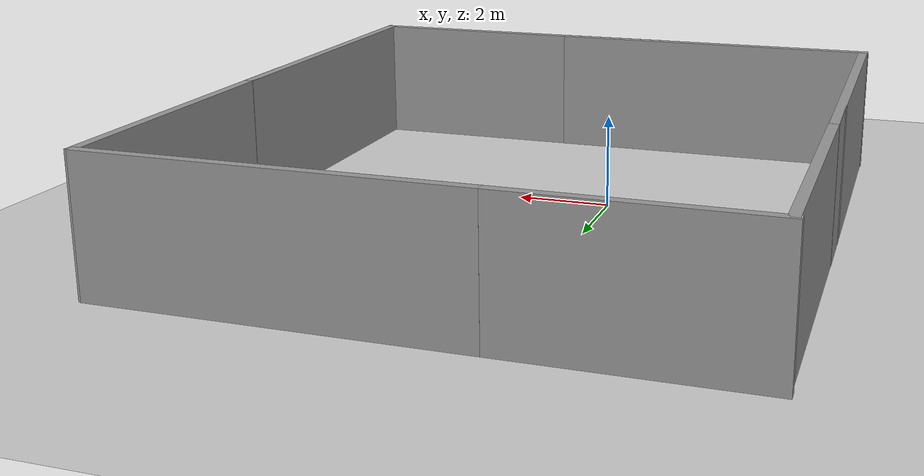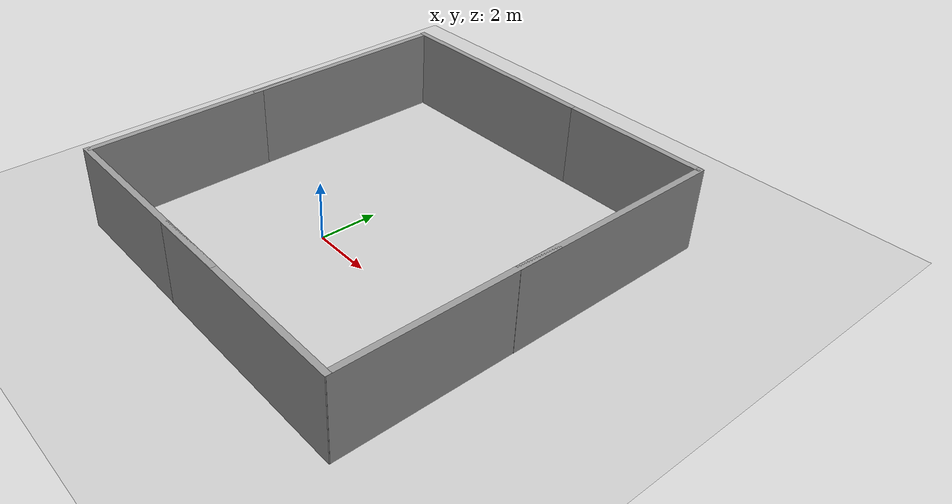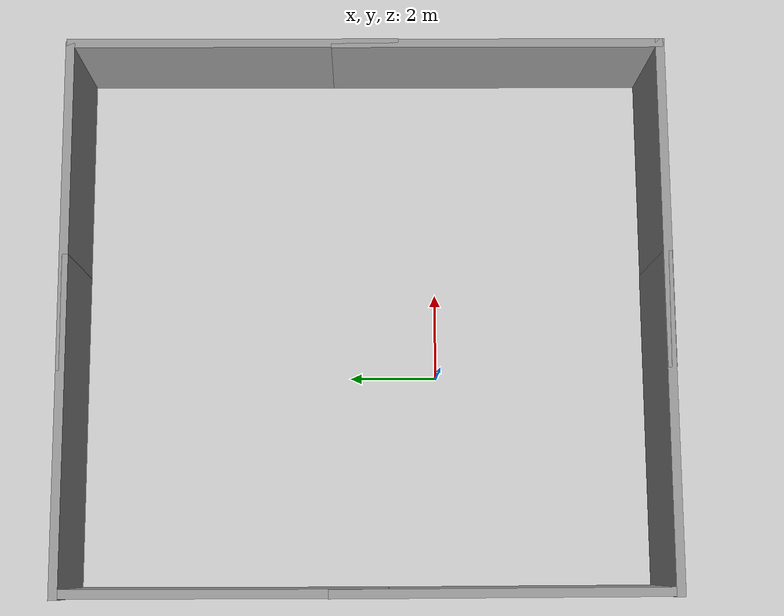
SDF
<sdf version="1.6">
 <world name="default">
  <model name="ground_plane">
   <static>1</static>
   <link name="link">
    <collision name="collision">
     <geometry><plane><normal>0 0 1</normal><size>100 100</size></plane></geometry>
     <surface><friction><ode><mu>100</mu><mu2>50</mu2></ode></friction></surface>
    </collision>
    <visual name="visual">
     <cast_shadows>0</cast_shadows>
     <geometry><plane><normal>0 0 1</normal><size>100 100</size></plane></geometry>
     <material>
      <script><uri>file://media/materials/scripts/gazebo.material</uri><name>Gazebo/Grey</name></script>
     </material>
    </visual>
   </link>
  </model>
  <light name="sun" type="directional">
   <pose>0 0 10 0 -0 0</pose>
   <diffuse>0.8 0.8 0.8 1</diffuse>
   <specular>0.2 0.2 0.2 1</specular>
   <attenuation>
    <range>1000</range>
    <constant>0.9</constant>
    <linear>0.01</linear>
    <quadratic>0.001</quadratic>
   </attenuation>
   <direction>-0.5 0.1 -0.9</direction>
  </light>
  <gravity>0 0 -9.8</gravity>
  <magnetic_field>6e-06 2.3e-05 -4.2e-05</magnetic_field>
  <atmosphere type="adiabatic"/>
  <physics name="default_physics" default="0" type="ode">
   <max_step_size>0.001</max_step_size>
   <real_time_factor>1</real_time_factor>
   <real_time_update_rate>1000</real_time_update_rate>
  </physics>
  <scene><ambient>0.4 0.4 0.4 1</ambient><background>0.7 0.7 0.7 1</background><shadows>1</shadows></scene>
  <spherical_coordinates>
   <surface_model>EARTH_WGS84</surface_model>
   <latitude_deg>0</latitude_deg>
   <longitude_deg>0</longitude_deg>
   <elevation>0</elevation>
   <heading_deg>0</heading_deg>
  </spherical_coordinates>
  <model name="grey_wall">
   <static>1</static>
   <link name="link">
    <pose>0 0 1.4 0 -0 0</pose>
    <collision name="collision"><geometry><box><size>7.5 0.2 2.8</size></box></geometry></collision>
    <visual name="visual">
     <cast_shadows>0</cast_shadows>
     <geometry><box><size>7.5 0.2 2.8</size></box></geometry>
     <material>
      <script>
       <uri>model://grey_wall/materials/scripts</uri>
       <uri>model://grey_wall/materials/textures</uri>
       <name>vrc/grey_wall</name>
      </script>
     </material>
    </visual>
   </link>
   <pose>-1.26893 -5.01303 0 0 -0 0</pose>
  </model>
  <model name="grey_wall_0">
   <static>1</static>
   <link name="link">
    <pose>0 0 1.4 0 -0 0</pose>
    <collision name="collision"><geometry><box><size>7.5 0.2 2.8</size></box></geometry></collision>
    <visual name="visual">
     <cast_shadows>0</cast_shadows>
     <geometry><box><size>7.5 0.2 2.8</size></box></geometry>
     <material>
      <script>
       <uri>model://grey_wall/materials/scripts</uri>
       <uri>model://grey_wall/materials/textures</uri>
       <name>vrc/grey_wall</name>
      </script>
     </material>
    </visual>
   </link>
   <pose>3.64249 -5.02065 0 0 -0 0</pose>
  </model>
  <model name="grey_wall_1">
   <static>1</static>
   <link name="link">
    <pose>0 0 1.4 0 -0 0</pose>
    <collision name="collision"><geometry><box><size>7.5 0.2 2.8</size></box></geometry></collision>
    <visual name="visual">
     <cast_shadows>0</cast_shadows>
     <geometry><box><size>7.5 0.2 2.8</size></box></geometry>
     <material>
      <script>
       <uri>model://grey_wall/materials/scripts</uri>
       <uri>model://grey_wall/materials/textures</uri>
       <name>vrc/grey_wall</name>
      </script>
     </material>
    </visual>
   </link>
   <pose>-1.294 8.31084 0 0 -0 0</pose>
  </model>
  <model name="grey_wall_2">
   <static>1</static>
   <link name="link">
    <pose>0 0 1.4 0 -0 0</pose>
    <collision name="collision"><geometry><box><size>7.5 0.2 2.8</size></box></geometry></collision>
    <visual name="visual">
     <cast_shadows>0</cast_shadows>
     <geometry><box><size>7.5 0.2 2.8</size></box></geometry>
     <material>
      <script>
       <uri>model://grey_wall/materials/scripts</uri>
       <uri>model://grey_wall/materials/textures</uri>
       <name>vrc/grey_wall</name>
      </script>
     </material>
    </visual>
   </link>
   <pose>3.62319 8.312 0 0 -0 0</pose>
  </model>
  <model name="grey_wall_3">
   <static>1</static>
   <link name="link">
    <pose>0 0 1.4 0 -0 0</pose>
    <collision name="collision"><geometry><box><size>7.5 0.2 2.8</size></box></geometry></collision>
    <visual name="visual">
     <cast_shadows>0</cast_shadows>
     <geometry><box><size>7.5 0.2 2.8</size></box></geometry>
     <material>
      <script>
       <uri>model://grey_wall/materials/scripts</uri>
       <uri>model://grey_wall/materials/textures</uri>
       <name>vrc/grey_wall</name>
      </script>
     </material>
    </visual>
   </link>
   <pose>-4.91739 -1.27823 -0 0 0 -1.56721</pose>
  </model>
  <model name="grey_wall_3_clone">
   <static>1</static>
   <link name="link">
    <pose>0 0 1.4 0 -0 0</pose>
    <collision name="collision"><geometry><box><size>7.5 0.2 2.8</size></box></geometry></collision>
    <visual name="visual">
     <cast_shadows>0</cast_shadows>
     <geometry><box><size>7.5 0.2 2.8</size></box></geometry>
     <material>
      <script>
       <uri>model://grey_wall/materials/scripts</uri>
       <uri>model://grey_wall/materials/textures</uri>
       <name>vrc/grey_wall</name>
      </script>
     </material>
    </visual>
   </link>
   <pose>-4.92072 4.59651 0 0 -0 1.56921</pose>
  </model>
  <model name="grey_wall_3_clone_0">
   <static>1</static>
   <link name="link">
    <pose>0 0 1.4 0 -0 0</pose>
    <collision name="collision"><geometry><box><size>7.5 0.2 2.8</size></box></geometry></collision>
    <visual name="visual">
     <cast_shadows>0</cast_shadows>
     <geometry><box><size>7.5 0.2 2.8</size></box></geometry>
     <material>
      <script>
       <uri>model://grey_wall/materials/scripts</uri>
       <uri>model://grey_wall/materials/textures</uri>
       <name>vrc/grey_wall</name>
      </script>
     </material>
    </visual>
   </link>
   <pose>7.30344 -1.34092 0 0 -0 1.56921</pose>
  </model>
  <model name="grey_wall_3_clone_1">
   <static>1</static>
   <link name="link">
    <pose>0 0 1.4 0 -0 0</pose>
    <collision name="collision"><geometry><box><size>7.5 0.2 2.8</size></box></geometry></collision>
    <visual name="visual">
     <cast_shadows>0</cast_shadows>
     <geometry><box><size>7.5 0.2 2.8</size></box></geometry>
     <material>
      <script>
       <uri>model://grey_wall/materials/scripts</uri>
       <uri>model://grey_wall/materials/textures</uri>
       <name>vrc/grey_wall</name>
      </script>
     </material>
    </visual>
   </link>
   <pose>7.32074 4.64659 0 0 -0 1.56921</pose>
  </model>
 </world>
</sdf>
